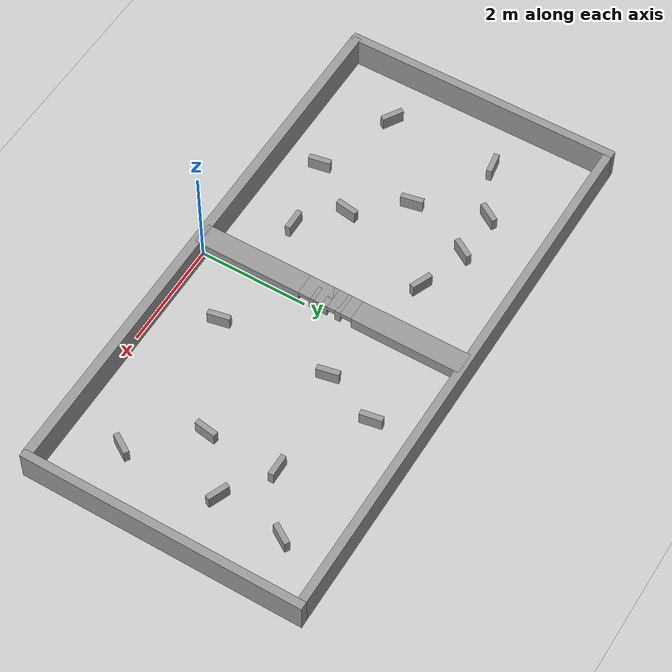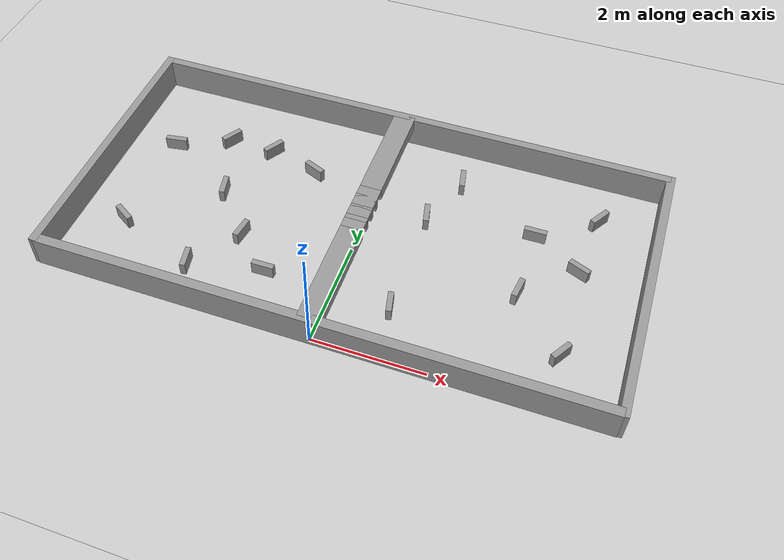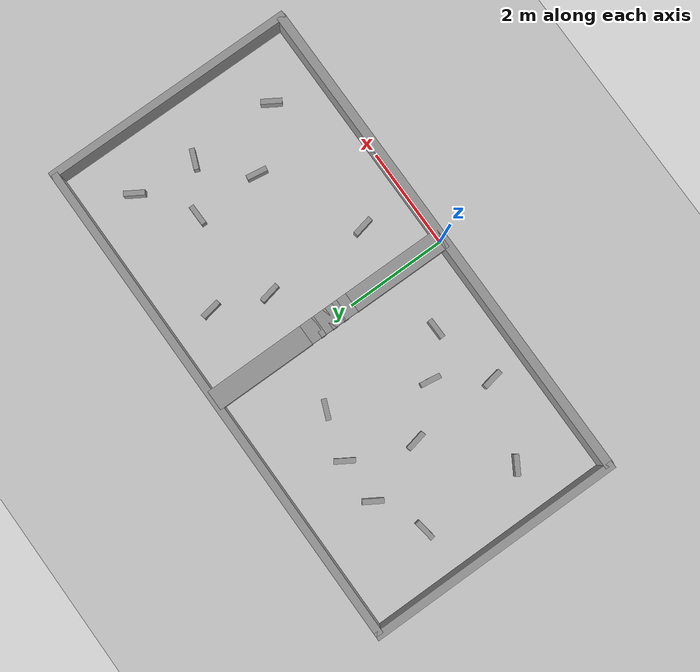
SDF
<sdf version="1.6">
 <world name="default">
  <light name="sun" type="directional">
   <pose>0 0 10 0 -0 0</pose>
   <diffuse>0.8 0.8 0.8 1</diffuse>
   <specular>0.2 0.2 0.2 1</specular>
   <attenuation>
    <range>1000</range>
    <constant>0.9</constant>
    <linear>0.01</linear>
    <quadratic>0.001</quadratic>
   </attenuation>
   <direction>-0.5 0.1 -0.9</direction>
  </light>
  <model name="ground_plane">
   <static>1</static>
   <link name="link">
    <collision name="collision">
     <geometry><plane><normal>0 0 1</normal><size>100 100</size></plane></geometry>
     <surface><friction><ode><mu>100</mu><mu2>50</mu2></ode></friction></surface>
    </collision>
    <visual name="visual">
     <cast_shadows>0</cast_shadows>
     <geometry><plane><normal>0 0 1</normal><size>100 100</size></plane></geometry>
     <material>
      <script><uri>file://media/materials/scripts/gazebo.material</uri><name>Gazebo/Grey</name></script>
     </material>
    </visual>
   </link>
  </model>
  <gravity>0 0 -9.8</gravity>
  <magnetic_field>6e-06 2.3e-05 -4.2e-05</magnetic_field>
  <atmosphere type="adiabatic"/>
  <physics name="default_physics" default="0" type="ode">
   <max_step_size>0.001</max_step_size>
   <real_time_factor>1</real_time_factor>
   <real_time_update_rate>1000</real_time_update_rate>
  </physics>
  <scene><ambient>0.4 0.4 0.4 1</ambient><background>0.7 0.7 0.7 1</background><shadows>1</shadows></scene>
  <spherical_coordinates>
   <surface_model>EARTH_WGS84</surface_model>
   <latitude_deg>0</latitude_deg>
   <longitude_deg>0</longitude_deg>
   <elevation>0</elevation>
   <heading_deg>0</heading_deg>
  </spherical_coordinates>
  <model name="unit_box">
   <link name="link">
    <inertial>
     <mass>1</mass>
     <inertia>
      <ixx>0.166667</ixx>
      <ixy>0</ixy>
      <ixz>0</ixz>
      <iyy>0.166667</iyy>
      <iyz>0</iyz>
      <izz>0.166667</izz>
     </inertia>
    </inertial>
    <pose>0 0 0.3 0 -0 0</pose>
    <visual name="visual">
     <geometry><box><size>10 0.175 0.59</size></box></geometry>
     <material>
      <script><name>Gazebo/Grey</name><uri>file://media/materials/scripts/gazebo.material</uri></script>
      <shader type="pixel"><normal_map>__default__</normal_map></shader>
      <ambient>0.3 0.3 0.3 1</ambient>
      <diffuse>0.7 0.7 0.7 1</diffuse>
      <specular>0.01 0.01 0.01 1</specular>
      <emissive>0 0 0 1</emissive>
     </material>
    </visual>
    <collision name="collision">
     <geometry><box><size>10 0.175 0.59</size></box></geometry>
     <surface>
      <friction>
       <ode><mu>1</mu><mu2>1</mu2><fdir1>0 0 0</fdir1><slip1>0</slip1><slip2>0</slip2></ode>
       <torsional>
        <coefficient>1</coefficient>
        <patch_radius>0</patch_radius>
        <surface_radius>0</surface_radius>
        <use_patch_radius>1</use_patch_radius>
        <ode><slip>0</slip></ode>
       </torsional>
      </friction>
      <bounce><restitution_coefficient>0</restitution_coefficient><threshold>1e+06</threshold></bounce>
      <contact>
       <collide_without_contact>0</collide_without_contact>
       <collide_without_contact_bitmask>1</collide_without_contact_bitmask>
       <collide_bitmask>1</collide_bitmask>
       <ode>
        <soft_cfm>0</soft_cfm>
        <soft_erp>0.2</soft_erp>
        <kp>1e+13</kp>
        <kd>1</kd>
        <max_vel>0.01</max_vel>
        <min_depth>0</min_depth>
       </ode>
       <bullet>
        <split_impulse>1</split_impulse>
        <split_impulse_penetration_threshold>-0.01</split_impulse_penetration_threshold>
        <soft_cfm>0</soft_cfm>
        <soft_erp>0.2</soft_erp>
        <kp>1e+13</kp>
        <kd>1</kd>
       </bullet>
      </contact>
     </surface>
    </collision>
   </link>
   <link name="link_0">
    <inertial>
     <mass>1</mass>
     <inertia>
      <ixx>0.166667</ixx>
      <ixy>0</ixy>
      <ixz>0</ixz>
      <iyy>0.166667</iyy>
      <iyz>0</iyz>
      <izz>0.166667</izz>
     </inertia>
    </inertial>
    <pose>-5 2.5 0.3 0 -0 0</pose>
    <visual name="visual">
     <geometry><box><size>0.15 5.15 0.59</size></box></geometry>
     <material>
      <lighting>1</lighting>
      <script><uri>file://media/materials/scripts/gazebo.material</uri><name>Gazebo/Grey</name></script>
      <shader type="pixel"><normal_map>__default__</normal_map></shader>
      <ambient>0.3 0.3 0.3 1</ambient>
      <diffuse>0.7 0.7 0.7 1</diffuse>
      <specular>0.01 0.01 0.01 1</specular>
      <emissive>0 0 0 1</emissive>
     </material>
    </visual>
    <collision name="collision">
     <geometry><box><size>0.15 5.15 0.59</size></box></geometry>
     <surface>
      <friction>
       <ode><mu>1</mu><mu2>1</mu2><fdir1>0 0 0</fdir1><slip1>0</slip1><slip2>0</slip2></ode>
       <torsional>
        <coefficient>1</coefficient>
        <patch_radius>0</patch_radius>
        <surface_radius>0</surface_radius>
        <use_patch_radius>1</use_patch_radius>
        <ode><slip>0</slip></ode>
       </torsional>
      </friction>
      <bounce><restitution_coefficient>0</restitution_coefficient><threshold>1e+06</threshold></bounce>
      <contact>
       <collide_without_contact>0</collide_without_contact>
       <collide_without_contact_bitmask>1</collide_without_contact_bitmask>
       <collide_bitmask>1</collide_bitmask>
       <ode>
        <soft_cfm>0</soft_cfm>
        <soft_erp>0.2</soft_erp>
        <kp>1e+13</kp>
        <kd>1</kd>
        <max_vel>0.01</max_vel>
        <min_depth>0</min_depth>
       </ode>
       <bullet>
        <split_impulse>1</split_impulse>
        <split_impulse_penetration_threshold>-0.01</split_impulse_penetration_threshold>
        <soft_cfm>0</soft_cfm>
        <soft_erp>0.2</soft_erp>
        <kp>1e+13</kp>
        <kd>1</kd>
       </bullet>
      </contact>
     </surface>
    </collision>
   </link>
   <link name="link_0_clone">
    <inertial>
     <mass>1</mass>
     <inertia>
      <ixx>0.166667</ixx>
      <ixy>0</ixy>
      <ixz>0</ixz>
      <iyy>0.166667</iyy>
      <iyz>0</iyz>
      <izz>0.166667</izz>
     </inertia>
    </inertial>
    <pose>5 2.5 0.3 0 -0 0</pose>
    <visual name="visual">
     <geometry><box><size>0.15 5.15 0.59</size></box></geometry>
     <material>
      <lighting>1</lighting>
      <script><uri>file://media/materials/scripts/gazebo.material</uri><name>Gazebo/Grey</name></script>
      <shader type="pixel"><normal_map>__default__</normal_map></shader>
      <ambient>0.3 0.3 0.3 1</ambient>
      <diffuse>0.7 0.7 0.7 1</diffuse>
      <specular>0.01 0.01 0.01 1</specular>
      <emissive>0 0 0 1</emissive>
     </material>
    </visual>
    <collision name="collision">
     <geometry><box><size>0.15 5.15 0.59</size></box></geometry>
     <surface>
      <friction>
       <ode><mu>1</mu><mu2>1</mu2><fdir1>0 0 0</fdir1><slip1>0</slip1><slip2>0</slip2></ode>
       <torsional>
        <coefficient>1</coefficient>
        <patch_radius>0</patch_radius>
        <surface_radius>0</surface_radius>
        <use_patch_radius>1</use_patch_radius>
        <ode><slip>0</slip></ode>
       </torsional>
      </friction>
      <bounce><restitution_coefficient>0</restitution_coefficient><threshold>1e+06</threshold></bounce>
      <contact>
       <collide_without_contact>0</collide_without_contact>
       <collide_without_contact_bitmask>1</collide_without_contact_bitmask>
       <collide_bitmask>1</collide_bitmask>
       <ode>
        <soft_cfm>0</soft_cfm>
        <soft_erp>0.2</soft_erp>
        <kp>1e+13</kp>
        <kd>1</kd>
        <max_vel>0.01</max_vel>
        <min_depth>0</min_depth>
       </ode>
       <bullet>
        <split_impulse>1</split_impulse>
        <split_impulse_penetration_threshold>-0.01</split_impulse_penetration_threshold>
        <soft_cfm>0</soft_cfm>
        <soft_erp>0.2</soft_erp>
        <kp>1e+13</kp>
        <kd>1</kd>
       </bullet>
      </contact>
     </surface>
    </collision>
   </link>
   <link name="link_1_clone_0">
    <inertial>
     <mass>1</mass>
     <inertia>
      <ixx>0.166667</ixx>
      <ixy>0</ixy>
      <ixz>0</ixz>
      <iyy>0.166667</iyy>
      <iyz>0</iyz>
      <izz>0.166667</izz>
     </inertia>
    </inertial>
    <pose>0 2.25 0.475 0 -0 0</pose>
    <visual name="visual">
     <geometry><box><size>0.4 0.1 0.24</size></box></geometry>
     <material>
      <lighting>1</lighting>
      <script><uri>file://media/materials/scripts/gazebo.material</uri><name>Gazebo/Grey</name></script>
      <shader type="pixel"><normal_map>__default__</normal_map></shader>
      <ambient>0.3 0.3 0.3 1</ambient>
      <diffuse>0.7 0.7 0.7 1</diffuse>
      <specular>0.01 0.01 0.01 1</specular>
      <emissive>0 0 0 1</emissive>
     </material>
    </visual>
    <collision name="collision">
     <geometry><box><size>0.4 0.1 0.24</size></box></geometry>
     <surface>
      <friction>
       <ode><mu>1</mu><mu2>1</mu2><fdir1>0 0 0</fdir1><slip1>0</slip1><slip2>0</slip2></ode>
       <torsional>
        <coefficient>1</coefficient>
        <patch_radius>0</patch_radius>
        <surface_radius>0</surface_radius>
        <use_patch_radius>1</use_patch_radius>
        <ode><slip>0</slip></ode>
       </torsional>
      </friction>
      <bounce><restitution_coefficient>0</restitution_coefficient><threshold>1e+06</threshold></bounce>
      <contact>
       <collide_without_contact>0</collide_without_contact>
       <collide_without_contact_bitmask>1</collide_without_contact_bitmask>
       <collide_bitmask>1</collide_bitmask>
       <ode>
        <soft_cfm>0</soft_cfm>
        <soft_erp>0.2</soft_erp>
        <kp>1e+13</kp>
        <kd>1</kd>
        <max_vel>0.01</max_vel>
        <min_depth>0</min_depth>
       </ode>
       <bullet>
        <split_impulse>1</split_impulse>
        <split_impulse_penetration_threshold>-0.01</split_impulse_penetration_threshold>
        <soft_cfm>0</soft_cfm>
        <soft_erp>0.2</soft_erp>
        <kp>1e+13</kp>
        <kd>1</kd>
       </bullet>
      </contact>
     </surface>
    </collision>
   </link>
   <link name="link_1_clone_0_clone">
    <inertial>
     <mass>1</mass>
     <inertia>
      <ixx>0.166667</ixx>
      <ixy>0</ixy>
      <ixz>0</ixz>
      <iyy>0.166667</iyy>
      <iyz>0</iyz>
      <izz>0.166667</izz>
     </inertia>
    </inertial>
    <pose>0 2.5 0.475 0 -0 0</pose>
    <visual name="visual">
     <geometry><box><size>0.4 0.1 0.24</size></box></geometry>
     <material>
      <lighting>1</lighting>
      <script><uri>file://media/materials/scripts/gazebo.material</uri><name>Gazebo/Grey</name></script>
      <shader type="pixel"><normal_map>__default__</normal_map></shader>
      <ambient>0.3 0.3 0.3 1</ambient>
      <diffuse>0.7 0.7 0.7 1</diffuse>
      <specular>0.01 0.01 0.01 1</specular>
      <emissive>0 0 0 1</emissive>
     </material>
    </visual>
    <collision name="collision">
     <geometry><box><size>0.4 0.1 0.24</size></box></geometry>
     <surface>
      <friction>
       <ode><mu>1</mu><mu2>1</mu2><fdir1>0 0 0</fdir1><slip1>0</slip1><slip2>0</slip2></ode>
       <torsional>
        <coefficient>1</coefficient>
        <patch_radius>0</patch_radius>
        <surface_radius>0</surface_radius>
        <use_patch_radius>1</use_patch_radius>
        <ode><slip>0</slip></ode>
       </torsional>
      </friction>
      <bounce><restitution_coefficient>0</restitution_coefficient><threshold>1e+06</threshold></bounce>
      <contact>
       <collide_without_contact>0</collide_without_contact>
       <collide_without_contact_bitmask>1</collide_without_contact_bitmask>
       <collide_bitmask>1</collide_bitmask>
       <ode>
        <soft_cfm>0</soft_cfm>
        <soft_erp>0.2</soft_erp>
        <kp>1e+13</kp>
        <kd>1</kd>
        <max_vel>0.01</max_vel>
        <min_depth>0</min_depth>
       </ode>
       <bullet>
        <split_impulse>1</split_impulse>
        <split_impulse_penetration_threshold>-0.01</split_impulse_penetration_threshold>
        <soft_cfm>0</soft_cfm>
        <soft_erp>0.2</soft_erp>
        <kp>1e+13</kp>
        <kd>1</kd>
       </bullet>
      </contact>
     </surface>
    </collision>
   </link>
   <link name="link_1_clone_0_clone_clone_0">
    <inertial>
     <mass>1</mass>
     <inertia>
      <ixx>0.166667</ixx>
      <ixy>0</ixy>
      <ixz>0</ixz>
      <iyy>0.166667</iyy>
      <iyz>0</iyz>
      <izz>0.166667</izz>
     </inertia>
    </inertial>
    <pose>0 2.75 0.475 0 -0 0</pose>
    <visual name="visual">
     <geometry><box><size>0.4 0.1 0.24</size></box></geometry>
     <material>
      <lighting>1</lighting>
      <script><uri>file://media/materials/scripts/gazebo.material</uri><name>Gazebo/Grey</name></script>
      <shader type="pixel"><normal_map>__default__</normal_map></shader>
      <ambient>0.3 0.3 0.3 1</ambient>
      <diffuse>0.7 0.7 0.7 1</diffuse>
      <specular>0.01 0.01 0.01 1</specular>
      <emissive>0 0 0 1</emissive>
     </material>
    </visual>
    <collision name="collision">
     <geometry><box><size>0.4 0.1 0.24</size></box></geometry>
     <surface>
      <friction>
       <ode><mu>1</mu><mu2>1</mu2><fdir1>0 0 0</fdir1><slip1>0</slip1><slip2>0</slip2></ode>
       <torsional>
        <coefficient>1</coefficient>
        <patch_radius>0</patch_radius>
        <surface_radius>0</surface_radius>
        <use_patch_radius>1</use_patch_radius>
        <ode><slip>0</slip></ode>
       </torsional>
      </friction>
      <bounce><restitution_coefficient>0</restitution_coefficient><threshold>1e+06</threshold></bounce>
      <contact>
       <collide_without_contact>0</collide_without_contact>
       <collide_without_contact_bitmask>1</collide_without_contact_bitmask>
       <collide_bitmask>1</collide_bitmask>
       <ode>
        <soft_cfm>0</soft_cfm>
        <soft_erp>0.2</soft_erp>
        <kp>1e+13</kp>
        <kd>1</kd>
        <max_vel>0.01</max_vel>
        <min_depth>0</min_depth>
       </ode>
       <bullet>
        <split_impulse>1</split_impulse>
        <split_impulse_penetration_threshold>-0.01</split_impulse_penetration_threshold>
        <soft_cfm>0</soft_cfm>
        <soft_erp>0.2</soft_erp>
        <kp>1e+13</kp>
        <kd>1</kd>
       </bullet>
      </contact>
     </surface>
    </collision>
   </link>
   <link name="link_1_clone_0_clone_clone_1">
    <inertial>
     <mass>1</mass>
     <inertia>
      <ixx>0.166667</ixx>
      <ixy>0</ixy>
      <ixz>0</ixz>
      <iyy>0.166667</iyy>
      <iyz>0</iyz>
      <izz>0.166667</izz>
     </inertia>
    </inertial>
    <pose>-2.67133 2.49509 0.125 0 0 -1.36276</pose>
    <visual name="visual">
     <geometry><box><size>0.4 0.1 0.25</size></box></geometry>
     <material>
      <lighting>1</lighting>
      <script><uri>file://media/materials/scripts/gazebo.material</uri><name>Gazebo/Grey</name></script>
      <shader type="pixel"><normal_map>__default__</normal_map></shader>
      <ambient>0.3 0.3 0.3 1</ambient>
      <diffuse>0.7 0.7 0.7 1</diffuse>
      <specular>0.01 0.01 0.01 1</specular>
      <emissive>0 0 0 1</emissive>
     </material>
    </visual>
    <collision name="collision">
     <geometry><box><size>0.4 0.1 0.25</size></box></geometry>
     <surface>
      <friction>
       <ode><mu>1</mu><mu2>1</mu2><fdir1>0 0 0</fdir1><slip1>0</slip1><slip2>0</slip2></ode>
       <torsional>
        <coefficient>1</coefficient>
        <patch_radius>0</patch_radius>
        <surface_radius>0</surface_radius>
        <use_patch_radius>1</use_patch_radius>
        <ode><slip>0</slip></ode>
       </torsional>
      </friction>
      <bounce><restitution_coefficient>0</restitution_coefficient><threshold>1e+06</threshold></bounce>
      <contact>
       <collide_without_contact>0</collide_without_contact>
       <collide_without_contact_bitmask>1</collide_without_contact_bitmask>
       <collide_bitmask>1</collide_bitmask>
       <ode>
        <soft_cfm>0</soft_cfm>
        <soft_erp>0.2</soft_erp>
        <kp>1e+13</kp>
        <kd>1</kd>
        <max_vel>0.01</max_vel>
        <min_depth>0</min_depth>
       </ode>
       <bullet>
        <split_impulse>1</split_impulse>
        <split_impulse_penetration_threshold>-0.01</split_impulse_penetration_threshold>
        <soft_cfm>0</soft_cfm>
        <soft_erp>0.2</soft_erp>
        <kp>1e+13</kp>
        <kd>1</kd>
       </bullet>
      </contact>
     </surface>
    </collision>
   </link>
   <link name="link_1_clone_0_clone_clone_1_clone">
    <inertial>
     <mass>1</mass>
     <inertia>
      <ixx>0.166667</ixx>
      <ixy>0</ixy>
      <ixz>0</ixz>
      <iyy>0.166667</iyy>
      <iyz>0</iyz>
      <izz>0.166667</izz>
     </inertia>
    </inertial>
    <pose>-2.21288 3.7408 0.125 0 -0 1.0177</pose>
    <visual name="visual">
     <geometry><box><size>0.4 0.1 0.25</size></box></geometry>
     <material>
      <lighting>1</lighting>
      <script><uri>file://media/materials/scripts/gazebo.material</uri><name>Gazebo/Grey</name></script>
      <shader type="pixel"><normal_map>__default__</normal_map></shader>
      <ambient>0.3 0.3 0.3 1</ambient>
      <diffuse>0.7 0.7 0.7 1</diffuse>
      <specular>0.01 0.01 0.01 1</specular>
      <emissive>0 0 0 1</emissive>
     </material>
    </visual>
    <collision name="collision">
     <geometry><box><size>0.4 0.1 0.25</size></box></geometry>
     <surface>
      <friction>
       <ode><mu>1</mu><mu2>1</mu2><fdir1>0 0 0</fdir1><slip1>0</slip1><slip2>0</slip2></ode>
       <torsional>
        <coefficient>1</coefficient>
        <patch_radius>0</patch_radius>
        <surface_radius>0</surface_radius>
        <use_patch_radius>1</use_patch_radius>
        <ode><slip>0</slip></ode>
       </torsional>
      </friction>
      <bounce><restitution_coefficient>0</restitution_coefficient><threshold>1e+06</threshold></bounce>
      <contact>
       <collide_without_contact>0</collide_without_contact>
       <collide_without_contact_bitmask>1</collide_without_contact_bitmask>
       <collide_bitmask>1</collide_bitmask>
       <ode>
        <soft_cfm>0</soft_cfm>
        <soft_erp>0.2</soft_erp>
        <kp>1e+13</kp>
        <kd>1</kd>
        <max_vel>0.01</max_vel>
        <min_depth>0</min_depth>
       </ode>
       <bullet>
        <split_impulse>1</split_impulse>
        <split_impulse_penetration_threshold>-0.01</split_impulse_penetration_threshold>
        <soft_cfm>0</soft_cfm>
        <soft_erp>0.2</soft_erp>
        <kp>1e+13</kp>
        <kd>1</kd>
       </bullet>
      </contact>
     </surface>
    </collision>
   </link>
   <link name="link_1_clone_0_clone_clone_1_clone_0">
    <inertial>
     <mass>1</mass>
     <inertia>
      <ixx>0.166667</ixx>
      <ixy>0</ixy>
      <ixz>0</ixz>
      <iyy>0.166667</iyy>
      <iyz>0</iyz>
      <izz>0.166667</izz>
     </inertia>
    </inertial>
    <pose>-1.9425 1.64707 0.125 0 -0 1.42</pose>
    <visual name="visual">
     <geometry><box><size>0.4 0.1 0.25</size></box></geometry>
     <material>
      <lighting>1</lighting>
      <script><uri>file://media/materials/scripts/gazebo.material</uri><name>Gazebo/Grey</name></script>
      <shader type="pixel"><normal_map>__default__</normal_map></shader>
      <ambient>0.3 0.3 0.3 1</ambient>
      <diffuse>0.7 0.7 0.7 1</diffuse>
      <specular>0.01 0.01 0.01 1</specular>
      <emissive>0 0 0 1</emissive>
     </material>
    </visual>
    <collision name="collision">
     <geometry><box><size>0.4 0.1 0.25</size></box></geometry>
     <surface>
      <friction>
       <ode><mu>1</mu><mu2>1</mu2><fdir1>0 0 0</fdir1><slip1>0</slip1><slip2>0</slip2></ode>
       <torsional>
        <coefficient>1</coefficient>
        <patch_radius>0</patch_radius>
        <surface_radius>0</surface_radius>
        <use_patch_radius>1</use_patch_radius>
        <ode><slip>0</slip></ode>
       </torsional>
      </friction>
      <bounce><restitution_coefficient>0</restitution_coefficient><threshold>1e+06</threshold></bounce>
      <contact>
       <collide_without_contact>0</collide_without_contact>
       <collide_without_contact_bitmask>1</collide_without_contact_bitmask>
       <collide_bitmask>1</collide_bitmask>
       <ode>
        <soft_cfm>0</soft_cfm>
        <soft_erp>0.2</soft_erp>
        <kp>1e+13</kp>
        <kd>1</kd>
        <max_vel>0.01</max_vel>
        <min_depth>0</min_depth>
       </ode>
       <bullet>
        <split_impulse>1</split_impulse>
        <split_impulse_penetration_threshold>-0.01</split_impulse_penetration_threshold>
        <soft_cfm>0</soft_cfm>
        <soft_erp>0.2</soft_erp>
        <kp>1e+13</kp>
        <kd>1</kd>
       </bullet>
      </contact>
     </surface>
    </collision>
   </link>
   <link name="link_1_clone_0_clone_clone_1_clone_0_clone">
    <inertial>
     <mass>1</mass>
     <inertia>
      <ixx>0.166667</ixx>
      <ixy>0</ixy>
      <ixz>0</ixz>
      <iyy>0.166667</iyy>
      <iyz>0</iyz>
      <izz>0.166667</izz>
     </inertia>
    </inertial>
    <pose>2.96697 1.99891 0.125 0 -0 1.42</pose>
    <visual name="visual">
     <geometry><box><size>0.4 0.1 0.25</size></box></geometry>
     <material>
      <lighting>1</lighting>
      <script><uri>file://media/materials/scripts/gazebo.material</uri><name>Gazebo/Grey</name></script>
      <shader type="pixel"><normal_map>__default__</normal_map></shader>
      <ambient>0.3 0.3 0.3 1</ambient>
      <diffuse>0.7 0.7 0.7 1</diffuse>
      <specular>0.01 0.01 0.01 1</specular>
      <emissive>0 0 0 1</emissive>
     </material>
    </visual>
    <collision name="collision">
     <geometry><box><size>0.4 0.1 0.25</size></box></geometry>
     <surface>
      <friction>
       <ode><mu>1</mu><mu2>1</mu2><fdir1>0 0 0</fdir1><slip1>0</slip1><slip2>0</slip2></ode>
       <torsional>
        <coefficient>1</coefficient>
        <patch_radius>0</patch_radius>
        <surface_radius>0</surface_radius>
        <use_patch_radius>1</use_patch_radius>
        <ode><slip>0</slip></ode>
       </torsional>
      </friction>
      <bounce><restitution_coefficient>0</restitution_coefficient><threshold>1e+06</threshold></bounce>
      <contact>
       <collide_without_contact>0</collide_without_contact>
       <collide_without_contact_bitmask>1</collide_without_contact_bitmask>
       <collide_bitmask>1</collide_bitmask>
       <ode>
        <soft_cfm>0</soft_cfm>
        <soft_erp>0.2</soft_erp>
        <kp>1e+13</kp>
        <kd>1</kd>
        <max_vel>0.01</max_vel>
        <min_depth>0</min_depth>
       </ode>
       <bullet>
        <split_impulse>1</split_impulse>
        <split_impulse_penetration_threshold>-0.01</split_impulse_penetration_threshold>
        <soft_cfm>0</soft_cfm>
        <soft_erp>0.2</soft_erp>
        <kp>1e+13</kp>
        <kd>1</kd>
       </bullet>
      </contact>
     </surface>
    </collision>
   </link>
   <link name="link_1_clone_0_clone_clone_1_clone_1">
    <inertial>
     <mass>1</mass>
     <inertia>
      <ixx>0.166667</ixx>
      <ixy>0</ixy>
      <ixz>0</ixz>
      <iyy>0.166667</iyy>
      <iyz>0</iyz>
      <izz>0.166667</izz>
     </inertia>
    </inertial>
    <pose>-1.27339 3.47747 0.125 0 0 -0.389342</pose>
    <visual name="visual">
     <geometry><box><size>0.4 0.1 0.25</size></box></geometry>
     <material>
      <lighting>1</lighting>
      <script><uri>file://media/materials/scripts/gazebo.material</uri><name>Gazebo/Grey</name></script>
      <shader type="pixel"><normal_map>__default__</normal_map></shader>
      <ambient>0.3 0.3 0.3 1</ambient>
      <diffuse>0.7 0.7 0.7 1</diffuse>
      <specular>0.01 0.01 0.01 1</specular>
      <emissive>0 0 0 1</emissive>
     </material>
    </visual>
    <collision name="collision">
     <geometry><box><size>0.4 0.1 0.25</size></box></geometry>
     <surface>
      <friction>
       <ode><mu>1</mu><mu2>1</mu2><fdir1>0 0 0</fdir1><slip1>0</slip1><slip2>0</slip2></ode>
       <torsional>
        <coefficient>1</coefficient>
        <patch_radius>0</patch_radius>
        <surface_radius>0</surface_radius>
        <use_patch_radius>1</use_patch_radius>
        <ode><slip>0</slip></ode>
       </torsional>
      </friction>
      <bounce><restitution_coefficient>0</restitution_coefficient><threshold>1e+06</threshold></bounce>
      <contact>
       <collide_without_contact>0</collide_without_contact>
       <collide_without_contact_bitmask>1</collide_without_contact_bitmask>
       <collide_bitmask>1</collide_bitmask>
       <ode>
        <soft_cfm>0</soft_cfm>
        <soft_erp>0.2</soft_erp>
        <kp>1e+13</kp>
        <kd>1</kd>
        <max_vel>0.01</max_vel>
        <min_depth>0</min_depth>
       </ode>
       <bullet>
        <split_impulse>1</split_impulse>
        <split_impulse_penetration_threshold>-0.01</split_impulse_penetration_threshold>
        <soft_cfm>0</soft_cfm>
        <soft_erp>0.2</soft_erp>
        <kp>1e+13</kp>
        <kd>1</kd>
       </bullet>
      </contact>
     </surface>
    </collision>
   </link>
   <link name="link_1_clone_0_clone_clone_1_clone_1_clone">
    <inertial>
     <mass>1</mass>
     <inertia>
      <ixx>0.166667</ixx>
      <ixy>0</ixy>
      <ixz>0</ixz>
      <iyy>0.166667</iyy>
      <iyz>0</iyz>
      <izz>0.166667</izz>
     </inertia>
    </inertial>
    <pose>3.84818 2.77976 0.125 0 0 -0.389342</pose>
    <visual name="visual">
     <geometry><box><size>0.4 0.1 0.25</size></box></geometry>
     <material>
      <lighting>1</lighting>
      <script><uri>file://media/materials/scripts/gazebo.material</uri><name>Gazebo/Grey</name></script>
      <shader type="pixel"><normal_map>__default__</normal_map></shader>
      <ambient>0.3 0.3 0.3 1</ambient>
      <diffuse>0.7 0.7 0.7 1</diffuse>
      <specular>0.01 0.01 0.01 1</specular>
      <emissive>0 0 0 1</emissive>
     </material>
    </visual>
    <collision name="collision">
     <geometry><box><size>0.4 0.1 0.25</size></box></geometry>
     <surface>
      <friction>
       <ode><mu>1</mu><mu2>1</mu2><fdir1>0 0 0</fdir1><slip1>0</slip1><slip2>0</slip2></ode>
       <torsional>
        <coefficient>1</coefficient>
        <patch_radius>0</patch_radius>
        <surface_radius>0</surface_radius>
        <use_patch_radius>1</use_patch_radius>
        <ode><slip>0</slip></ode>
       </torsional>
      </friction>
      <bounce><restitution_coefficient>0</restitution_coefficient><threshold>1e+06</threshold></bounce>
      <contact>
       <collide_without_contact>0</collide_without_contact>
       <collide_without_contact_bitmask>1</collide_without_contact_bitmask>
       <collide_bitmask>1</collide_bitmask>
       <ode>
        <soft_cfm>0</soft_cfm>
        <soft_erp>0.2</soft_erp>
        <kp>1e+13</kp>
        <kd>1</kd>
        <max_vel>0.01</max_vel>
        <min_depth>0</min_depth>
       </ode>
       <bullet>
        <split_impulse>1</split_impulse>
        <split_impulse_penetration_threshold>-0.01</split_impulse_penetration_threshold>
        <soft_cfm>0</soft_cfm>
        <soft_erp>0.2</soft_erp>
        <kp>1e+13</kp>
        <kd>1</kd>
       </bullet>
      </contact>
     </surface>
    </collision>
   </link>
   <link name="link_1_clone_0_clone_clone_1_clone_2">
    <inertial>
     <mass>1</mass>
     <inertia>
      <ixx>0.166667</ixx>
      <ixy>0</ixy>
      <ixz>0</ixz>
      <iyy>0.166667</iyy>
      <iyz>0</iyz>
      <izz>0.166667</izz>
     </inertia>
    </inertial>
    <pose>-4.04272 3.29468 0.125 0 0 -2.9823</pose>
    <visual name="visual">
     <geometry><box><size>0.4 0.1 0.25</size></box></geometry>
     <material>
      <lighting>1</lighting>
      <script><uri>file://media/materials/scripts/gazebo.material</uri><name>Gazebo/Grey</name></script>
      <shader type="pixel"><normal_map>__default__</normal_map></shader>
      <ambient>0.3 0.3 0.3 1</ambient>
      <diffuse>0.7 0.7 0.7 1</diffuse>
      <specular>0.01 0.01 0.01 1</specular>
      <emissive>0 0 0 1</emissive>
     </material>
    </visual>
    <collision name="collision">
     <geometry><box><size>0.4 0.1 0.25</size></box></geometry>
     <surface>
      <friction>
       <ode><mu>1</mu><mu2>1</mu2><fdir1>0 0 0</fdir1><slip1>0</slip1><slip2>0</slip2></ode>
       <torsional>
        <coefficient>1</coefficient>
        <patch_radius>0</patch_radius>
        <surface_radius>0</surface_radius>
        <use_patch_radius>1</use_patch_radius>
        <ode><slip>0</slip></ode>
       </torsional>
      </friction>
      <bounce><restitution_coefficient>0</restitution_coefficient><threshold>1e+06</threshold></bounce>
      <contact>
       <collide_without_contact>0</collide_without_contact>
       <collide_without_contact_bitmask>1</collide_without_contact_bitmask>
       <collide_bitmask>1</collide_bitmask>
       <ode>
        <soft_cfm>0</soft_cfm>
        <soft_erp>0.2</soft_erp>
        <kp>1e+13</kp>
        <kd>1</kd>
        <max_vel>0.01</max_vel>
        <min_depth>0</min_depth>
       </ode>
       <bullet>
        <split_impulse>1</split_impulse>
        <split_impulse_penetration_threshold>-0.01</split_impulse_penetration_threshold>
        <soft_cfm>0</soft_cfm>
        <soft_erp>0.2</soft_erp>
        <kp>1e+13</kp>
        <kd>1</kd>
       </bullet>
      </contact>
     </surface>
    </collision>
   </link>
   <link name="link_1_clone_0_clone_clone_1_clone_3">
    <inertial>
     <mass>1</mass>
     <inertia>
      <ixx>0.166667</ixx>
      <ixy>0</ixy>
      <ixz>0</ixz>
      <iyy>0.166667</iyy>
      <iyz>0</iyz>
      <izz>0.166667</izz>
     </inertia>
    </inertial>
    <pose>-4.07041 1.27936 0.125 0 -0 2.60178</pose>
    <visual name="visual">
     <geometry><box><size>0.4 0.1 0.25</size></box></geometry>
     <material>
      <lighting>1</lighting>
      <script><uri>file://media/materials/scripts/gazebo.material</uri><name>Gazebo/Grey</name></script>
      <shader type="pixel"><normal_map>__default__</normal_map></shader>
      <ambient>0.3 0.3 0.3 1</ambient>
      <diffuse>0.7 0.7 0.7 1</diffuse>
      <specular>0.01 0.01 0.01 1</specular>
      <emissive>0 0 0 1</emissive>
     </material>
    </visual>
    <collision name="collision">
     <geometry><box><size>0.4 0.1 0.25</size></box></geometry>
     <surface>
      <friction>
       <ode><mu>1</mu><mu2>1</mu2><fdir1>0 0 0</fdir1><slip1>0</slip1><slip2>0</slip2></ode>
       <torsional>
        <coefficient>1</coefficient>
        <patch_radius>0</patch_radius>
        <surface_radius>0</surface_radius>
        <use_patch_radius>1</use_patch_radius>
        <ode><slip>0</slip></ode>
       </torsional>
      </friction>
      <bounce><restitution_coefficient>0</restitution_coefficient><threshold>1e+06</threshold></bounce>
      <contact>
       <collide_without_contact>0</collide_without_contact>
       <collide_without_contact_bitmask>1</collide_without_contact_bitmask>
       <collide_bitmask>1</collide_bitmask>
       <ode>
        <soft_cfm>0</soft_cfm>
        <soft_erp>0.2</soft_erp>
        <kp>1e+13</kp>
        <kd>1</kd>
        <max_vel>0.01</max_vel>
        <min_depth>0</min_depth>
       </ode>
       <bullet>
        <split_impulse>1</split_impulse>
        <split_impulse_penetration_threshold>-0.01</split_impulse_penetration_threshold>
        <soft_cfm>0</soft_cfm>
        <soft_erp>0.2</soft_erp>
        <kp>1e+13</kp>
        <kd>1</kd>
       </bullet>
      </contact>
     </surface>
    </collision>
   </link>
   <link name="link_1_clone_0_clone_clone_1_clone_4">
    <inertial>
     <mass>1</mass>
     <inertia>
      <ixx>0.166667</ixx>
      <ixy>0</ixy>
      <ixz>0</ixz>
      <iyy>0.166667</iyy>
      <iyz>0</iyz>
      <izz>0.166667</izz>
     </inertia>
    </inertial>
    <pose>-2.57333 0.72312 0.125 0 -0 1.75222</pose>
    <visual name="visual">
     <geometry><box><size>0.4 0.1 0.25</size></box></geometry>
     <material>
      <lighting>1</lighting>
      <script><uri>file://media/materials/scripts/gazebo.material</uri><name>Gazebo/Grey</name></script>
      <shader type="pixel"><normal_map>__default__</normal_map></shader>
      <ambient>0.3 0.3 0.3 1</ambient>
      <diffuse>0.7 0.7 0.7 1</diffuse>
      <specular>0.01 0.01 0.01 1</specular>
      <emissive>0 0 0 1</emissive>
     </material>
    </visual>
    <collision name="collision">
     <geometry><box><size>0.4 0.1 0.25</size></box></geometry>
     <surface>
      <friction>
       <ode><mu>1</mu><mu2>1</mu2><fdir1>0 0 0</fdir1><slip1>0</slip1><slip2>0</slip2></ode>
       <torsional>
        <coefficient>1</coefficient>
        <patch_radius>0</patch_radius>
        <surface_radius>0</surface_radius>
        <use_patch_radius>1</use_patch_radius>
        <ode><slip>0</slip></ode>
       </torsional>
      </friction>
      <bounce><restitution_coefficient>0</restitution_coefficient><threshold>1e+06</threshold></bounce>
      <contact>
       <collide_without_contact>0</collide_without_contact>
       <collide_without_contact_bitmask>1</collide_without_contact_bitmask>
       <collide_bitmask>1</collide_bitmask>
       <ode>
        <soft_cfm>0</soft_cfm>
        <soft_erp>0.2</soft_erp>
        <kp>1e+13</kp>
        <kd>1</kd>
        <max_vel>0.01</max_vel>
        <min_depth>0</min_depth>
       </ode>
       <bullet>
        <split_impulse>1</split_impulse>
        <split_impulse_penetration_threshold>-0.01</split_impulse_penetration_threshold>
        <soft_cfm>0</soft_cfm>
        <soft_erp>0.2</soft_erp>
        <kp>1e+13</kp>
        <kd>1</kd>
       </bullet>
      </contact>
     </surface>
    </collision>
   </link>
   <link name="link_1_clone_0_clone_clone_1_clone_4_clone">
    <inertial>
     <mass>1</mass>
     <inertia>
      <ixx>0.166667</ixx>
      <ixy>0</ixy>
      <ixz>0</ixz>
      <iyy>0.166667</iyy>
      <iyz>0</iyz>
      <izz>0.166667</izz>
     </inertia>
    </inertial>
    <pose>1.41276 4.12196 0.125 0 -0 1.75222</pose>
    <visual name="visual">
     <geometry><box><size>0.4 0.1 0.25</size></box></geometry>
     <material>
      <lighting>1</lighting>
      <script><uri>file://media/materials/scripts/gazebo.material</uri><name>Gazebo/Grey</name></script>
      <shader type="pixel"><normal_map>__default__</normal_map></shader>
      <ambient>0.3 0.3 0.3 1</ambient>
      <diffuse>0.7 0.7 0.7 1</diffuse>
      <specular>0.01 0.01 0.01 1</specular>
      <emissive>0 0 0 1</emissive>
     </material>
    </visual>
    <collision name="collision">
     <geometry><box><size>0.4 0.1 0.25</size></box></geometry>
     <surface>
      <friction>
       <ode><mu>1</mu><mu2>1</mu2><fdir1>0 0 0</fdir1><slip1>0</slip1><slip2>0</slip2></ode>
       <torsional>
        <coefficient>1</coefficient>
        <patch_radius>0</patch_radius>
        <surface_radius>0</surface_radius>
        <use_patch_radius>1</use_patch_radius>
        <ode><slip>0</slip></ode>
       </torsional>
      </friction>
      <bounce><restitution_coefficient>0</restitution_coefficient><threshold>1e+06</threshold></bounce>
      <contact>
       <collide_without_contact>0</collide_without_contact>
       <collide_without_contact_bitmask>1</collide_without_contact_bitmask>
       <collide_bitmask>1</collide_bitmask>
       <ode>
        <soft_cfm>0</soft_cfm>
        <soft_erp>0.2</soft_erp>
        <kp>1e+13</kp>
        <kd>1</kd>
        <max_vel>0.01</max_vel>
        <min_depth>0</min_depth>
       </ode>
       <bullet>
        <split_impulse>1</split_impulse>
        <split_impulse_penetration_threshold>-0.01</split_impulse_penetration_threshold>
        <soft_cfm>0</soft_cfm>
        <soft_erp>0.2</soft_erp>
        <kp>1e+13</kp>
        <kd>1</kd>
       </bullet>
      </contact>
     </surface>
    </collision>
   </link>
   <link name="link_1_clone_0_clone_clone_1_clone_5">
    <inertial>
     <mass>1</mass>
     <inertia>
      <ixx>0.166667</ixx>
      <ixy>0</ixy>
      <ixz>0</ixz>
      <iyy>0.166667</iyy>
      <iyz>0</iyz>
      <izz>0.166667</izz>
     </inertia>
    </inertial>
    <pose>-3.08821 3.74797 0.125 0 -0 1.0177</pose>
    <visual name="visual">
     <geometry><box><size>0.4 0.1 0.25</size></box></geometry>
     <material>
      <lighting>1</lighting>
      <script><uri>file://media/materials/scripts/gazebo.material</uri><name>Gazebo/Grey</name></script>
      <shader type="pixel"><normal_map>__default__</normal_map></shader>
      <ambient>0.3 0.3 0.3 1</ambient>
      <diffuse>0.7 0.7 0.7 1</diffuse>
      <specular>0.01 0.01 0.01 1</specular>
      <emissive>0 0 0 1</emissive>
     </material>
    </visual>
    <collision name="collision">
     <geometry><box><size>0.4 0.1 0.25</size></box></geometry>
     <surface>
      <friction>
       <ode><mu>1</mu><mu2>1</mu2><fdir1>0 0 0</fdir1><slip1>0</slip1><slip2>0</slip2></ode>
       <torsional>
        <coefficient>1</coefficient>
        <patch_radius>0</patch_radius>
        <surface_radius>0</surface_radius>
        <use_patch_radius>1</use_patch_radius>
        <ode><slip>0</slip></ode>
       </torsional>
      </friction>
      <bounce><restitution_coefficient>0</restitution_coefficient><threshold>1e+06</threshold></bounce>
      <contact>
       <collide_without_contact>0</collide_without_contact>
       <collide_without_contact_bitmask>1</collide_without_contact_bitmask>
       <collide_bitmask>1</collide_bitmask>
       <ode>
        <soft_cfm>0</soft_cfm>
        <soft_erp>0.2</soft_erp>
        <kp>1e+13</kp>
        <kd>1</kd>
        <max_vel>0.01</max_vel>
        <min_depth>0</min_depth>
       </ode>
       <bullet>
        <split_impulse>1</split_impulse>
        <split_impulse_penetration_threshold>-0.01</split_impulse_penetration_threshold>
        <soft_cfm>0</soft_cfm>
        <soft_erp>0.2</soft_erp>
        <kp>1e+13</kp>
        <kd>1</kd>
       </bullet>
      </contact>
     </surface>
    </collision>
   </link>
   <link name="link_1_clone_0_clone_clone_1_clone_5_clone_clone">
    <inertial>
     <mass>1</mass>
     <inertia>
      <ixx>0.166667</ixx>
      <ixy>0</ixy>
      <ixz>0</ixz>
      <iyy>0.166667</iyy>
      <iyz>0</iyz>
      <izz>0.166667</izz>
     </inertia>
    </inertial>
    <pose>3.90258 1.00954 0.125 0 -0 1.0177</pose>
    <visual name="visual">
     <geometry><box><size>0.4 0.1 0.25</size></box></geometry>
     <material>
      <lighting>1</lighting>
      <script><uri>file://media/materials/scripts/gazebo.material</uri><name>Gazebo/Grey</name></script>
      <shader type="pixel"><normal_map>__default__</normal_map></shader>
      <ambient>0.3 0.3 0.3 1</ambient>
      <diffuse>0.7 0.7 0.7 1</diffuse>
      <specular>0.01 0.01 0.01 1</specular>
      <emissive>0 0 0 1</emissive>
     </material>
    </visual>
    <collision name="collision">
     <geometry><box><size>0.4 0.1 0.25</size></box></geometry>
     <surface>
      <friction>
       <ode><mu>1</mu><mu2>1</mu2><fdir1>0 0 0</fdir1><slip1>0</slip1><slip2>0</slip2></ode>
       <torsional>
        <coefficient>1</coefficient>
        <patch_radius>0</patch_radius>
        <surface_radius>0</surface_radius>
        <use_patch_radius>1</use_patch_radius>
        <ode><slip>0</slip></ode>
       </torsional>
      </friction>
      <bounce><restitution_coefficient>0</restitution_coefficient><threshold>1e+06</threshold></bounce>
      <contact>
       <collide_without_contact>0</collide_without_contact>
       <collide_without_contact_bitmask>1</collide_without_contact_bitmask>
       <collide_bitmask>1</collide_bitmask>
       <ode>
        <soft_cfm>0</soft_cfm>
        <soft_erp>0.2</soft_erp>
        <kp>1e+13</kp>
        <kd>1</kd>
        <max_vel>0.01</max_vel>
        <min_depth>0</min_depth>
       </ode>
       <bullet>
        <split_impulse>1</split_impulse>
        <split_impulse_penetration_threshold>-0.01</split_impulse_penetration_threshold>
        <soft_cfm>0</soft_cfm>
        <soft_erp>0.2</soft_erp>
        <kp>1e+13</kp>
        <kd>1</kd>
       </bullet>
      </contact>
     </surface>
    </collision>
   </link>
   <link name="link_1_clone_0_clone_clone_1_clone_6">
    <inertial>
     <mass>1</mass>
     <inertia>
      <ixx>0.166667</ixx>
      <ixy>0</ixy>
      <ixz>0</ixz>
      <iyy>0.166667</iyy>
      <iyz>0</iyz>
      <izz>0.166667</izz>
     </inertia>
    </inertial>
    <pose>-1.2487 1.01109 0.125 0 -0 0.01</pose>
    <visual name="visual">
     <geometry><box><size>0.4 0.1 0.25</size></box></geometry>
     <material>
      <lighting>1</lighting>
      <script><uri>file://media/materials/scripts/gazebo.material</uri><name>Gazebo/Grey</name></script>
      <shader type="pixel"><normal_map>__default__</normal_map></shader>
      <ambient>0.3 0.3 0.3 1</ambient>
      <diffuse>0.7 0.7 0.7 1</diffuse>
      <specular>0.01 0.01 0.01 1</specular>
      <emissive>0 0 0 1</emissive>
     </material>
    </visual>
    <collision name="collision">
     <geometry><box><size>0.4 0.1 0.25</size></box></geometry>
     <surface>
      <friction>
       <ode><mu>1</mu><mu2>1</mu2><fdir1>0 0 0</fdir1><slip1>0</slip1><slip2>0</slip2></ode>
       <torsional>
        <coefficient>1</coefficient>
        <patch_radius>0</patch_radius>
        <surface_radius>0</surface_radius>
        <use_patch_radius>1</use_patch_radius>
        <ode><slip>0</slip></ode>
       </torsional>
      </friction>
      <bounce><restitution_coefficient>0</restitution_coefficient><threshold>1e+06</threshold></bounce>
      <contact>
       <collide_without_contact>0</collide_without_contact>
       <collide_without_contact_bitmask>1</collide_without_contact_bitmask>
       <collide_bitmask>1</collide_bitmask>
       <ode>
        <soft_cfm>0</soft_cfm>
        <soft_erp>0.2</soft_erp>
        <kp>1e+13</kp>
        <kd>1</kd>
        <max_vel>0.01</max_vel>
        <min_depth>0</min_depth>
       </ode>
       <bullet>
        <split_impulse>1</split_impulse>
        <split_impulse_penetration_threshold>-0.01</split_impulse_penetration_threshold>
        <soft_cfm>0</soft_cfm>
        <soft_erp>0.2</soft_erp>
        <kp>1e+13</kp>
        <kd>1</kd>
       </bullet>
      </contact>
     </surface>
    </collision>
   </link>
   <link name="link_1_clone_0_clone_clone_1_clone_6_clone">
    <inertial>
     <mass>1</mass>
     <inertia>
      <ixx>0.166667</ixx>
      <ixy>0</ixy>
      <ixz>0</ixz>
      <iyy>0.166667</iyy>
      <iyz>0</iyz>
      <izz>0.166667</izz>
     </inertia>
    </inertial>
    <pose>2.96344 3.32146 0.125 0 -0 0.01</pose>
    <visual name="visual">
     <geometry><box><size>0.4 0.1 0.25</size></box></geometry>
     <material>
      <lighting>1</lighting>
      <script><uri>file://media/materials/scripts/gazebo.material</uri><name>Gazebo/Grey</name></script>
      <shader type="pixel"><normal_map>__default__</normal_map></shader>
      <ambient>0.3 0.3 0.3 1</ambient>
      <diffuse>0.7 0.7 0.7 1</diffuse>
      <specular>0.01 0.01 0.01 1</specular>
      <emissive>0 0 0 1</emissive>
     </material>
    </visual>
    <collision name="collision">
     <geometry><box><size>0.4 0.1 0.25</size></box></geometry>
     <surface>
      <friction>
       <ode><mu>1</mu><mu2>1</mu2><fdir1>0 0 0</fdir1><slip1>0</slip1><slip2>0</slip2></ode>
       <torsional>
        <coefficient>1</coefficient>
        <patch_radius>0</patch_radius>
        <surface_radius>0</surface_radius>
        <use_patch_radius>1</use_patch_radius>
        <ode><slip>0</slip></ode>
       </torsional>
      </friction>
      <bounce><restitution_coefficient>0</restitution_coefficient><threshold>1e+06</threshold></bounce>
      <contact>
       <collide_without_contact>0</collide_without_contact>
       <collide_without_contact_bitmask>1</collide_without_contact_bitmask>
       <collide_bitmask>1</collide_bitmask>
       <ode>
        <soft_cfm>0</soft_cfm>
        <soft_erp>0.2</soft_erp>
        <kp>1e+13</kp>
        <kd>1</kd>
        <max_vel>0.01</max_vel>
        <min_depth>0</min_depth>
       </ode>
       <bullet>
        <split_impulse>1</split_impulse>
        <split_impulse_penetration_threshold>-0.01</split_impulse_penetration_threshold>
        <soft_cfm>0</soft_cfm>
        <soft_erp>0.2</soft_erp>
        <kp>1e+13</kp>
        <kd>1</kd>
       </bullet>
      </contact>
     </surface>
    </collision>
   </link>
   <link name="link_1_clone_0_clone_clone_1_clone_7">
    <inertial>
     <mass>1</mass>
     <inertia>
      <ixx>0.166667</ixx>
      <ixy>0</ixy>
      <ixz>0</ixz>
      <iyy>0.166667</iyy>
      <iyz>0</iyz>
      <izz>0.166667</izz>
     </inertia>
    </inertial>
    <pose>1.03965 0.995472 0.125 0 0 -1.36276</pose>
    <visual name="visual">
     <geometry><box><size>0.4 0.1 0.25</size></box></geometry>
     <material>
      <lighting>1</lighting>
      <script><uri>file://media/materials/scripts/gazebo.material</uri><name>Gazebo/Grey</name></script>
      <shader type="pixel"><normal_map>__default__</normal_map></shader>
      <ambient>0.3 0.3 0.3 1</ambient>
      <diffuse>0.7 0.7 0.7 1</diffuse>
      <specular>0.01 0.01 0.01 1</specular>
      <emissive>0 0 0 1</emissive>
     </material>
    </visual>
    <collision name="collision">
     <geometry><box><size>0.4 0.1 0.25</size></box></geometry>
     <surface>
      <friction>
       <ode><mu>1</mu><mu2>1</mu2><fdir1>0 0 0</fdir1><slip1>0</slip1><slip2>0</slip2></ode>
       <torsional>
        <coefficient>1</coefficient>
        <patch_radius>0</patch_radius>
        <surface_radius>0</surface_radius>
        <use_patch_radius>1</use_patch_radius>
        <ode><slip>0</slip></ode>
       </torsional>
      </friction>
      <bounce><restitution_coefficient>0</restitution_coefficient><threshold>1e+06</threshold></bounce>
      <contact>
       <collide_without_contact>0</collide_without_contact>
       <collide_without_contact_bitmask>1</collide_without_contact_bitmask>
       <collide_bitmask>1</collide_bitmask>
       <ode>
        <soft_cfm>0</soft_cfm>
        <soft_erp>0.2</soft_erp>
        <kp>1e+13</kp>
        <kd>1</kd>
        <max_vel>0.01</max_vel>
        <min_depth>0</min_depth>
       </ode>
       <bullet>
        <split_impulse>1</split_impulse>
        <split_impulse_penetration_threshold>-0.01</split_impulse_penetration_threshold>
        <soft_cfm>0</soft_cfm>
        <soft_erp>0.2</soft_erp>
        <kp>1e+13</kp>
        <kd>1</kd>
       </bullet>
      </contact>
     </surface>
    </collision>
   </link>
   <link name="link_1_clone_0_clone_clone_1_clone_8">
    <inertial>
     <mass>1</mass>
     <inertia>
      <ixx>0.166667</ixx>
      <ixy>0</ixy>
      <ixz>0</ixz>
      <iyy>0.166667</iyy>
      <iyz>0</iyz>
      <izz>0.166667</izz>
     </inertia>
    </inertial>
    <pose>1.03485 3.08411 0.125 0 0 -1.36276</pose>
    <visual name="visual">
     <geometry><box><size>0.4 0.1 0.25</size></box></geometry>
     <material>
      <lighting>1</lighting>
      <script><uri>file://media/materials/scripts/gazebo.material</uri><name>Gazebo/Grey</name></script>
      <shader type="pixel"><normal_map>__default__</normal_map></shader>
      <ambient>0.3 0.3 0.3 1</ambient>
      <diffuse>0.7 0.7 0.7 1</diffuse>
      <specular>0.01 0.01 0.01 1</specular>
      <emissive>0 0 0 1</emissive>
     </material>
    </visual>
    <collision name="collision">
     <geometry><box><size>0.4 0.1 0.25</size></box></geometry>
     <surface>
      <friction>
       <ode><mu>1</mu><mu2>1</mu2><fdir1>0 0 0</fdir1><slip1>0</slip1><slip2>0</slip2></ode>
       <torsional>
        <coefficient>1</coefficient>
        <patch_radius>0</patch_radius>
        <surface_radius>0</surface_radius>
        <use_patch_radius>1</use_patch_radius>
        <ode><slip>0</slip></ode>
       </torsional>
      </friction>
      <bounce><restitution_coefficient>0</restitution_coefficient><threshold>1e+06</threshold></bounce>
      <contact>
       <collide_without_contact>0</collide_without_contact>
       <collide_without_contact_bitmask>1</collide_without_contact_bitmask>
       <collide_bitmask>1</collide_bitmask>
       <ode>
        <soft_cfm>0</soft_cfm>
        <soft_erp>0.2</soft_erp>
        <kp>1e+13</kp>
        <kd>1</kd>
        <max_vel>0.01</max_vel>
        <min_depth>0</min_depth>
       </ode>
       <bullet>
        <split_impulse>1</split_impulse>
        <split_impulse_penetration_threshold>-0.01</split_impulse_penetration_threshold>
        <soft_cfm>0</soft_cfm>
        <soft_erp>0.2</soft_erp>
        <kp>1e+13</kp>
        <kd>1</kd>
       </bullet>
      </contact>
     </surface>
    </collision>
   </link>
   <link name="link_1_clone_0_clone_clone_1_clone_clone">
    <inertial>
     <mass>1</mass>
     <inertia>
      <ixx>0.166667</ixx>
      <ixy>0</ixy>
      <ixz>0</ixz>
      <iyy>0.166667</iyy>
      <iyz>0</iyz>
      <izz>0.166667</izz>
     </inertia>
    </inertial>
    <pose>3.96677 4.02792 0.125 0 -0 1.0177</pose>
    <visual name="visual">
     <geometry><box><size>0.4 0.1 0.25</size></box></geometry>
     <material>
      <lighting>1</lighting>
      <script><uri>file://media/materials/scripts/gazebo.material</uri><name>Gazebo/Grey</name></script>
      <shader type="pixel"><normal_map>__default__</normal_map></shader>
      <ambient>0.3 0.3 0.3 1</ambient>
      <diffuse>0.7 0.7 0.7 1</diffuse>
      <specular>0.01 0.01 0.01 1</specular>
      <emissive>0 0 0 1</emissive>
     </material>
    </visual>
    <collision name="collision">
     <geometry><box><size>0.4 0.1 0.25</size></box></geometry>
     <surface>
      <friction>
       <ode><mu>1</mu><mu2>1</mu2><fdir1>0 0 0</fdir1><slip1>0</slip1><slip2>0</slip2></ode>
       <torsional>
        <coefficient>1</coefficient>
        <patch_radius>0</patch_radius>
        <surface_radius>0</surface_radius>
        <use_patch_radius>1</use_patch_radius>
        <ode><slip>0</slip></ode>
       </torsional>
      </friction>
      <bounce><restitution_coefficient>0</restitution_coefficient><threshold>1e+06</threshold></bounce>
      <contact>
       <collide_without_contact>0</collide_without_contact>
       <collide_without_contact_bitmask>1</collide_without_contact_bitmask>
       <collide_bitmask>1</collide_bitmask>
       <ode>
        <soft_cfm>0</soft_cfm>
        <soft_erp>0.2</soft_erp>
        <kp>1e+13</kp>
        <kd>1</kd>
        <max_vel>0.01</max_vel>
        <min_depth>0</min_depth>
       </ode>
       <bullet>
        <split_impulse>1</split_impulse>
        <split_impulse_penetration_threshold>-0.01</split_impulse_penetration_threshold>
        <soft_cfm>0</soft_cfm>
        <soft_erp>0.2</soft_erp>
        <kp>1e+13</kp>
        <kd>1</kd>
       </bullet>
      </contact>
     </surface>
    </collision>
   </link>
   <link name="link_3">
    <inertial>
     <mass>1</mass>
     <inertia>
      <ixx>0.166667</ixx>
      <ixy>0</ixy>
      <ixz>0</ixz>
      <iyy>0.166667</iyy>
      <iyz>0</iyz>
      <izz>0.166667</izz>
     </inertia>
    </inertial>
    <pose>0 1 0.475 0 -0 0</pose>
    <visual name="visual">
     <geometry><box><size>0.4 2 0.24</size></box></geometry>
     <material>
      <lighting>1</lighting>
      <script><uri>file://media/materials/scripts/gazebo.material</uri><name>Gazebo/Grey</name></script>
      <shader type="pixel"><normal_map>__default__</normal_map></shader>
      <ambient>0.3 0.3 0.3 1</ambient>
      <diffuse>0.7 0.7 0.7 1</diffuse>
      <specular>0.01 0.01 0.01 1</specular>
      <emissive>0 0 0 1</emissive>
     </material>
    </visual>
    <collision name="collision">
     <geometry><box><size>0.4 2 0.24</size></box></geometry>
     <surface>
      <friction>
       <ode><mu>1</mu><mu2>1</mu2><fdir1>0 0 0</fdir1><slip1>0</slip1><slip2>0</slip2></ode>
       <torsional>
        <coefficient>1</coefficient>
        <patch_radius>0</patch_radius>
        <surface_radius>0</surface_radius>
        <use_patch_radius>1</use_patch_radius>
        <ode><slip>0</slip></ode>
       </torsional>
      </friction>
      <bounce><restitution_coefficient>0</restitution_coefficient><threshold>1e+06</threshold></bounce>
      <contact>
       <collide_without_contact>0</collide_without_contact>
       <collide_without_contact_bitmask>1</collide_without_contact_bitmask>
       <collide_bitmask>1</collide_bitmask>
       <ode>
        <soft_cfm>0</soft_cfm>
        <soft_erp>0.2</soft_erp>
        <kp>1e+13</kp>
        <kd>1</kd>
        <max_vel>0.01</max_vel>
        <min_depth>0</min_depth>
       </ode>
       <bullet>
        <split_impulse>1</split_impulse>
        <split_impulse_penetration_threshold>-0.01</split_impulse_penetration_threshold>
        <soft_cfm>0</soft_cfm>
        <soft_erp>0.2</soft_erp>
        <kp>1e+13</kp>
        <kd>1</kd>
       </bullet>
      </contact>
     </surface>
    </collision>
   </link>
   <link name="link_3_clone">
    <inertial>
     <mass>1</mass>
     <inertia>
      <ixx>0.166667</ixx>
      <ixy>0</ixy>
      <ixz>0</ixz>
      <iyy>0.166667</iyy>
      <iyz>0</iyz>
      <izz>0.166667</izz>
     </inertia>
    </inertial>
    <pose>0 4 0.475 0 -0 0</pose>
    <visual name="visual">
     <geometry><box><size>0.4 2 0.24</size></box></geometry>
     <material>
      <lighting>1</lighting>
      <script><uri>file://media/materials/scripts/gazebo.material</uri><name>Gazebo/Grey</name></script>
      <shader type="pixel"><normal_map>__default__</normal_map></shader>
      <ambient>0.3 0.3 0.3 1</ambient>
      <diffuse>0.7 0.7 0.7 1</diffuse>
      <specular>0.01 0.01 0.01 1</specular>
      <emissive>0 0 0 1</emissive>
     </material>
    </visual>
    <collision name="collision">
     <geometry><box><size>0.4 2 0.24</size></box></geometry>
     <surface>
      <friction>
       <ode><mu>1</mu><mu2>1</mu2><fdir1>0 0 0</fdir1><slip1>0</slip1><slip2>0</slip2></ode>
       <torsional>
        <coefficient>1</coefficient>
        <patch_radius>0</patch_radius>
        <surface_radius>0</surface_radius>
        <use_patch_radius>1</use_patch_radius>
        <ode><slip>0</slip></ode>
       </torsional>
      </friction>
      <bounce><restitution_coefficient>0</restitution_coefficient><threshold>1e+06</threshold></bounce>
      <contact>
       <collide_without_contact>0</collide_without_contact>
       <collide_without_contact_bitmask>1</collide_without_contact_bitmask>
       <collide_bitmask>1</collide_bitmask>
       <ode>
        <soft_cfm>0</soft_cfm>
        <soft_erp>0.2</soft_erp>
        <kp>1e+13</kp>
        <kd>1</kd>
        <max_vel>0.01</max_vel>
        <min_depth>0</min_depth>
       </ode>
       <bullet>
        <split_impulse>1</split_impulse>
        <split_impulse_penetration_threshold>-0.01</split_impulse_penetration_threshold>
        <soft_cfm>0</soft_cfm>
        <soft_erp>0.2</soft_erp>
        <kp>1e+13</kp>
        <kd>1</kd>
       </bullet>
      </contact>
     </surface>
    </collision>
   </link>
   <link name="link_4">
    <inertial>
     <mass>1</mass>
     <inertia>
      <ixx>0.166667</ixx>
      <ixy>0</ixy>
      <ixz>0</ixz>
      <iyy>0.166667</iyy>
      <iyz>0</iyz>
      <izz>0.166667</izz>
     </inertia>
    </inertial>
    <pose>0 2.5 0.55 0 -0 0</pose>
    <visual name="visual">
     <geometry><box><size>0.4 1 0.09</size></box></geometry>
     <material>
      <lighting>1</lighting>
      <script><uri>file://media/materials/scripts/gazebo.material</uri><name>Gazebo/Grey</name></script>
      <shader type="pixel"><normal_map>__default__</normal_map></shader>
      <ambient>0.3 0.3 0.3 1</ambient>
      <diffuse>0.7 0.7 0.7 1</diffuse>
      <specular>0.01 0.01 0.01 1</specular>
      <emissive>0 0 0 1</emissive>
     </material>
    </visual>
    <collision name="collision">
     <geometry><box><size>0.4 1 0.09</size></box></geometry>
     <surface>
      <friction>
       <ode><mu>1</mu><mu2>1</mu2><fdir1>0 0 0</fdir1><slip1>0</slip1><slip2>0</slip2></ode>
       <torsional>
        <coefficient>1</coefficient>
        <patch_radius>0</patch_radius>
        <surface_radius>0</surface_radius>
        <use_patch_radius>1</use_patch_radius>
        <ode><slip>0</slip></ode>
       </torsional>
      </friction>
      <bounce><restitution_coefficient>0</restitution_coefficient><threshold>1e+06</threshold></bounce>
      <contact>
       <collide_without_contact>0</collide_without_contact>
       <collide_without_contact_bitmask>1</collide_without_contact_bitmask>
       <collide_bitmask>1</collide_bitmask>
       <ode>
        <soft_cfm>0</soft_cfm>
        <soft_erp>0.2</soft_erp>
        <kp>1e+13</kp>
        <kd>1</kd>
        <max_vel>0.01</max_vel>
        <min_depth>0</min_depth>
       </ode>
       <bullet>
        <split_impulse>1</split_impulse>
        <split_impulse_penetration_threshold>-0.01</split_impulse_penetration_threshold>
        <soft_cfm>0</soft_cfm>
        <soft_erp>0.2</soft_erp>
        <kp>1e+13</kp>
        <kd>1</kd>
       </bullet>
      </contact>
     </surface>
    </collision>
   </link>
   <link name="link_clone">
    <inertial>
     <mass>1</mass>
     <inertia>
      <ixx>0.166667</ixx>
      <ixy>0</ixy>
      <ixz>0</ixz>
      <iyy>0.166667</iyy>
      <iyz>0</iyz>
      <izz>0.166667</izz>
     </inertia>
    </inertial>
    <pose>0 5 0.3 0 -0 0</pose>
    <visual name="visual">
     <geometry><box><size>10 0.15 0.59</size></box></geometry>
     <material>
      <script><name>Gazebo/Grey</name><uri>file://media/materials/scripts/gazebo.material</uri></script>
      <shader type="pixel"><normal_map>__default__</normal_map></shader>
      <ambient>0.3 0.3 0.3 1</ambient>
      <diffuse>0.7 0.7 0.7 1</diffuse>
      <specular>0.01 0.01 0.01 1</specular>
      <emissive>0 0 0 1</emissive>
     </material>
    </visual>
    <collision name="collision">
     <geometry><box><size>10 0.15 0.59</size></box></geometry>
     <surface>
      <friction>
       <ode><mu>1</mu><mu2>1</mu2><fdir1>0 0 0</fdir1><slip1>0</slip1><slip2>0</slip2></ode>
       <torsional>
        <coefficient>1</coefficient>
        <patch_radius>0</patch_radius>
        <surface_radius>0</surface_radius>
        <use_patch_radius>1</use_patch_radius>
        <ode><slip>0</slip></ode>
       </torsional>
      </friction>
      <bounce><restitution_coefficient>0</restitution_coefficient><threshold>1e+06</threshold></bounce>
      <contact>
       <collide_without_contact>0</collide_without_contact>
       <collide_without_contact_bitmask>1</collide_without_contact_bitmask>
       <collide_bitmask>1</collide_bitmask>
       <ode>
        <soft_cfm>0</soft_cfm>
        <soft_erp>0.2</soft_erp>
        <kp>1e+13</kp>
        <kd>1</kd>
        <max_vel>0.01</max_vel>
        <min_depth>0</min_depth>
       </ode>
       <bullet>
        <split_impulse>1</split_impulse>
        <split_impulse_penetration_threshold>-0.01</split_impulse_penetration_threshold>
        <soft_cfm>0</soft_cfm>
        <soft_erp>0.2</soft_erp>
        <kp>1e+13</kp>
        <kd>1</kd>
       </bullet>
      </contact>
     </surface>
    </collision>
   </link>
   <static>1</static>
  </model>
 </world>
</sdf>
